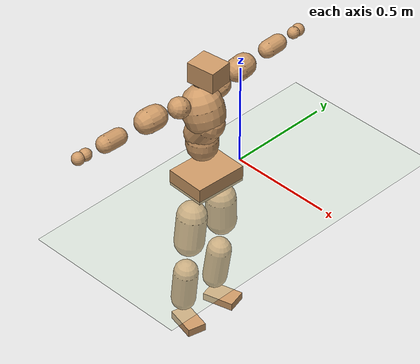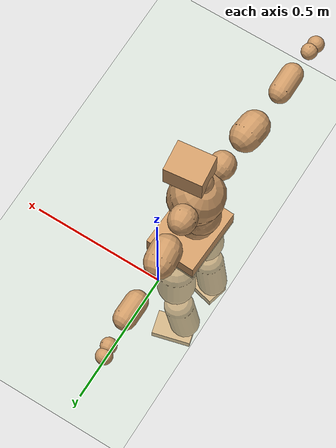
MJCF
<mujoco model="humanoid">
  <compiler coordinate="local" angle="radian"/>
  <default>
    <joint damping="0.0" armature="0.01" stiffness="0.0" limited="true"/>
    <geom conaffinity="1" condim="3" contype="7" margin="0.001" rgba="0.8 0.6 .4 1"/>
  </default>
  <asset>
    <texture type="skybox" builtin="gradient" rgb1=".4 .5 .6" rgb2="0 0 0" width="100" height="100"/>
    <texture builtin="flat" height="1278" mark="cross" markrgb="1 1 1" name="texgeom" random="0.01" rgb1="0.8 0.6 0.4" rgb2="0.8 0.6 0.4" type="cube" width="127"/>
    <texture builtin="checker" height="100" name="texplane" rgb1="0 0 0" rgb2="0.8 0.8 0.8" type="2d" width="100"/>
    <material name="MatPlane" reflectance="0.5" shininess="1" specular="1" texrepeat="60 60" texture="texplane"/>
    <material name="geom" texture="texgeom" texuniform="true"/>
  </asset>
  <worldbody>
    <light cutoff="100" diffuse="1 1 1" dir="-0 0 -1.3" directional="true" exponent="1" pos="0 0 1.3" specular=".1 .1 .1"/>
    <geom conaffinity="1" condim="3" name="floor" pos="0 0 0" rgba="0.8 0.9 0.8 1" size="100 100 .2" type="plane" material="MatPlane"/>
    <body name="Pelvis" pos="0.002 -0.2069 0.0374">
      <freejoint name="Pelvis"/>
      <geom type="box" contype="1" conaffinity="1" density="5359.374861" pos="-0.0052 0.0002 -0.0129" size="0.0976 0.1285 0.0397" quat="0.9997 0.0000 0.0000 -0.0225" name="Pelvis"/>
      <body name="L_Hip" pos="-0.0023 0.0847 -0.0906">
        <joint name="L_Hip_x" type="hinge" pos="0 0 0" axis="1 0 0" stiffness="1600" damping="160" armature="0.02" range="-180.0000 180.0000"/>
        <joint name="L_Hip_y" type="hinge" pos="0 0 0" axis="0 1 0" stiffness="1600" damping="160" armature="0.02" range="-180.0000 180.0000"/>
        <joint name="L_Hip_z" type="hinge" pos="0 0 0" axis="0 0 1" stiffness="1600" damping="160" armature="0.02" range="-180.0000 180.0000"/>
        <geom type="capsule" contype="1" conaffinity="1" density="2040.816327" size="0.0708" fromto="-0.0039 0.0067 -0.1005 -0.0091 0.0157 -0.2354" name="L_Hip"/>
        <body name="L_Knee" pos="-0.013 0.0225 -0.336">
          <joint name="L_Knee_x" type="hinge" pos="0 0 0" axis="1 0 0" stiffness="1600" damping="160" armature="0.02" range="-180.0000 180.0000"/>
          <joint name="L_Knee_y" type="hinge" pos="0 0 0" axis="0 1 0" stiffness="1600" damping="160" armature="0.02" range="-180.0000 180.0000"/>
          <joint name="L_Knee_z" type="hinge" pos="0 0 0" axis="0 0 1" stiffness="1600" damping="160" armature="0.02" range="-180.0000 180.0000"/>
          <geom type="capsule" contype="1" conaffinity="1" density="1234.567901" size="0.0575" fromto="-0.0123 -0.0023 -0.0866 -0.0364 -0.0067 -0.2573" name="L_Knee"/>
          <body name="L_Ankle" pos="-0.0487 -0.009 -0.3439">
            <joint name="L_Ankle_x" type="hinge" pos="0 0 0" axis="1 0 0" stiffness="1600" damping="160" armature="0.02" range="-180.0000 180.0000"/>
            <joint name="L_Ankle_y" type="hinge" pos="0 0 0" axis="0 1 0" stiffness="1600" damping="160" armature="0.02" range="-180.0000 180.0000"/>
            <joint name="L_Ankle_z" type="hinge" pos="0 0 0" axis="0 0 1" stiffness="1600" damping="160" armature="0.02" range="-180.0000 180.0000"/>
            <geom type="box" contype="1" conaffinity="1" density="1000.000046" pos="0.0525 0.0139 -0.0244" size="0.0763 0.0479 0.0187" quat="0.9917 0.0000 0.0000 0.1289" name="L_Ankle"/>
            <body name="L_Toe" pos="0.1049 0.0278 -0.0489">
              <joint name="L_Toe_x" type="hinge" pos="0 0 0" axis="1 0 0" stiffness="1000" damping="100" armature="0.02" range="-180.0000 180.0000"/>
              <joint name="L_Toe_y" type="hinge" pos="0 0 0" axis="0 1 0" stiffness="1000" damping="100" armature="0.02" range="-180.0000 180.0000"/>
              <joint name="L_Toe_z" type="hinge" pos="0 0 0" axis="0 0 1" stiffness="1000" damping="100" armature="0.02" range="-180.0000 180.0000"/>
              <geom type="box" contype="1" conaffinity="1" density="7816335.588965" pos="0.0000 0.0000 0.0258" size="0.0009 0.0023 0.001" quat="0.9908 0.0000 0.0000 0.1353" name="L_Toe"/>
            </body>
          </body>
        </body>
      </body>
      <body name="R_Hip" pos="-0.0003 -0.0828 -0.0903">
        <joint name="R_Hip_x" type="hinge" pos="0 0 0" axis="1 0 0" stiffness="1600" damping="160" armature="0.02" range="-180.0000 180.0000"/>
        <joint name="R_Hip_y" type="hinge" pos="0 0 0" axis="0 1 0" stiffness="1600" damping="160" armature="0.02" range="-180.0000 180.0000"/>
        <joint name="R_Hip_z" type="hinge" pos="0 0 0" axis="0 0 1" stiffness="1600" damping="160" armature="0.02" range="-180.0000 180.0000"/>
        <geom type="capsule" contype="1" conaffinity="1" density="2040.816327" size="0.0702" fromto="-0.0043 -0.0081 -0.0998 -0.0104 -0.0199 -0.2433" name="R_Hip"/>
        <body name="R_Knee" pos="-0.0147 -0.028 -0.3431">
          <joint name="R_Knee_x" type="hinge" pos="0 0 0" axis="1 0 0" stiffness="1600" damping="160" armature="0.02" range="-180.0000 180.0000"/>
          <joint name="R_Knee_y" type="hinge" pos="0 0 0" axis="0 1 0" stiffness="1600" damping="160" armature="0.02" range="-180.0000 180.0000"/>
          <joint name="R_Knee_z" type="hinge" pos="0 0 0" axis="0 0 1" stiffness="1600" damping="160" armature="0.02" range="-180.0000 180.0000"/>
          <geom type="capsule" contype="1" conaffinity="1" density="1234.567901" size="0.0575" fromto="-0.0119 0.0028 -0.0867 -0.0358 0.0084 -0.2605" name="R_Knee"/>
          <body name="R_Ankle" pos="-0.0477 0.0112 -0.3472">
            <joint name="R_Ankle_x" type="hinge" pos="0 0 0" axis="1 0 0" stiffness="1600" damping="160" armature="0.02" range="-180.0000 180.0000"/>
            <joint name="R_Ankle_y" type="hinge" pos="0 0 0" axis="0 1 0" stiffness="1600" damping="160" armature="0.02" range="-180.0000 180.0000"/>
            <joint name="R_Ankle_z" type="hinge" pos="0 0 0" axis="0 0 1" stiffness="1600" damping="160" armature="0.02" range="-180.0000 180.0000"/>
            <geom type="box" contype="1" conaffinity="1" density="999.999919" pos="0.0543 -0.0130 -0.0224" size="0.0766 0.0448 0.0194" quat="0.9931 0.0000 0.0000 -0.1174" name="R_Ankle"/>
            <body name="R_Toe" pos="0.1086 -0.0261 -0.0449">
              <joint name="R_Toe_x" type="hinge" pos="0 0 0" axis="1 0 0" stiffness="1000" damping="100" armature="0.02" range="-180.0000 180.0000"/>
              <joint name="R_Toe_y" type="hinge" pos="0 0 0" axis="0 1 0" stiffness="1000" damping="100" armature="0.02" range="-180.0000 180.0000"/>
              <joint name="R_Toe_z" type="hinge" pos="0 0 0" axis="0 0 1" stiffness="1000" damping="100" armature="0.02" range="-180.0000 180.0000"/>
              <geom type="box" contype="1" conaffinity="1" density="7831576.864094" pos="0.0000 0.0000 0.0228" size="0.0009 0.0022 0.001" quat="0.9943 0.0000 0.0000 -0.1068" name="R_Toe"/>
            </body>
          </body>
        </body>
      </body>
      <body name="Torso" pos="-0.0285 -0.0005 0.1033">
        <joint name="Torso_x" type="hinge" pos="0 0 0" axis="1 0 0" stiffness="2000" damping="200" armature="0.02" range="-180.0000 180.0000"/>
        <joint name="Torso_y" type="hinge" pos="0 0 0" axis="0 1 0" stiffness="2000" damping="200" armature="0.02" range="-180.0000 180.0000"/>
        <joint name="Torso_z" type="hinge" pos="0 0 0" axis="0 0 1" stiffness="2000" damping="200" armature="0.02" range="-180.0000 180.0000"/>
        <geom type="capsule" contype="1" conaffinity="1" density="2040.816327" size="0.074" fromto="-0.0033 0.0007 0.0739 -0.0019 0.0004 0.0415" name="Torso"/>
        <body name="Spine" pos="-0.0052 0.0011 0.1154">
          <joint name="Spine_x" type="hinge" pos="0 0 0" axis="1 0 0" stiffness="2000" damping="200" armature="0.02" range="-180.0000 180.0000"/>
          <joint name="Spine_y" type="hinge" pos="0 0 0" axis="0 1 0" stiffness="2000" damping="200" armature="0.02" range="-180.0000 180.0000"/>
          <joint name="Spine_z" type="hinge" pos="0 0 0" axis="0 0 1" stiffness="2000" damping="200" armature="0.02" range="-180.0000 180.0000"/>
          <geom type="capsule" contype="1" conaffinity="1" density="2040.816327" size="0.0739" fromto="0.0413 0.0009 0.0612 -0.0104 -0.0002 -0.0154" name="Spine"/>
          <body name="Chest" pos="0.0309 0.0007 0.0458">
            <joint name="Chest_x" type="hinge" pos="0 0 0" axis="1 0 0" stiffness="2000" damping="200" armature="0.02" range="-180.0000 180.0000"/>
            <joint name="Chest_y" type="hinge" pos="0 0 0" axis="0 1 0" stiffness="2000" damping="200" armature="0.02" range="-180.0000 180.0000"/>
            <joint name="Chest_z" type="hinge" pos="0 0 0" axis="0 0 1" stiffness="2000" damping="200" armature="0.02" range="-180.0000 180.0000"/>
            <geom type="capsule" contype="1" conaffinity="1" density="2040.816327" size="0.0969" fromto="-0.0297 -0.0004 0.0922 -0.0172 -0.0002 0.0534" name="Chest"/>
            <body name="Neck" pos="-0.0619 0.0002 0.203">
              <joint name="Neck_x" type="hinge" pos="0 0 0" axis="1 0 0" stiffness="1000" damping="100" armature="0.02" range="-180.0000 180.0000"/>
              <joint name="Neck_y" type="hinge" pos="0 0 0" axis="0 1 0" stiffness="1000" damping="100" armature="0.02" range="-180.0000 180.0000"/>
              <joint name="Neck_z" type="hinge" pos="0 0 0" axis="0 0 1" stiffness="1000" damping="100" armature="0.02" range="-180.0000 180.0000"/>
              <geom type="capsule" contype="1" conaffinity="1" density="1000" size="0.039" fromto="0.0243 0.0018 0.0305 0.0175 0.0013 0.0219" name="Neck"/>
              <body name="Head" pos="0.0418 0.0031 0.0525">
                <joint name="Head_x" type="hinge" pos="0 0 0" axis="1 0 0" stiffness="1000" damping="100" armature="0.02" range="-180.0000 180.0000"/>
                <joint name="Head_y" type="hinge" pos="0 0 0" axis="0 1 0" stiffness="1000" damping="100" armature="0.02" range="-180.0000 180.0000"/>
                <joint name="Head_z" type="hinge" pos="0 0 0" axis="0 0 1" stiffness="1000" damping="100" armature="0.02" range="-180.0000 180.0000"/>
                <geom type="box" contype="1" conaffinity="1" density="2250.00009" pos="0.0219 0.0025 0.0272" size="0.0701 0.0573 0.0501" quat="0.9983 0.0000 0.0000 0.0576" name="Head"/>
              </body>
            </body>
            <body name="L_Thorax" pos="-0.036 0.0745 0.1176">
              <joint name="L_Thorax_x" type="hinge" pos="0 0 0" axis="1 0 0" stiffness="1000" damping="100" armature="0.02" range="-180.0000 180.0000"/>
              <joint name="L_Thorax_y" type="hinge" pos="0 0 0" axis="0 1 0" stiffness="1000" damping="100" armature="0.02" range="-180.0000 180.0000"/>
              <joint name="L_Thorax_z" type="hinge" pos="0 0 0" axis="0 0 1" stiffness="1000" damping="100" armature="0.02" range="-180.0000 180.0000"/>
              <geom type="capsule" contype="1" conaffinity="1" density="1000" size="0.0497" fromto="-0.0052 0.0464 0.0171 -0.0038 0.0344 0.0127" name="L_Thorax"/>
              <body name="L_Shoulder" pos="-0.009 0.0808 0.0298">
                <joint name="L_Shoulder_x" type="hinge" pos="0 0 0" axis="1 0 0" stiffness="1000" damping="100" armature="0.02" range="-720.0000 720.0000"/>
                <joint name="L_Shoulder_y" type="hinge" pos="0 0 0" axis="0 1 0" stiffness="1000" damping="100" armature="0.02" range="-720.0000 720.0000"/>
                <joint name="L_Shoulder_z" type="hinge" pos="0 0 0" axis="0 0 1" stiffness="1000" damping="100" armature="0.02" range="-720.0000 720.0000"/>
                <geom type="capsule" contype="1" conaffinity="1" density="1000" size="0.0553" fromto="-0.0095 0.0848 -0.0017 -0.0147 0.1316 -0.0026" name="L_Shoulder"/>
                <body name="L_Elbow" pos="-0.0242 0.2164 -0.0043">
                  <joint name="L_Elbow_x" type="hinge" pos="0 0 0" axis="1 0 0" stiffness="1000" damping="100" armature="0.02" range="-720.0000 720.0000"/>
                  <joint name="L_Elbow_y" type="hinge" pos="0 0 0" axis="0 1 0" stiffness="1000" damping="100" armature="0.02" range="-720.0000 720.0000"/>
                  <joint name="L_Elbow_z" type="hinge" pos="0 0 0" axis="0 0 1" stiffness="1000" damping="100" armature="0.02" range="-720.0000 720.0000"/>
                  <geom type="capsule" contype="1" conaffinity="1" density="1000" size="0.0402" fromto="0.0006 0.0701 0.0025 0.0012 0.1374 0.0049" name="L_Elbow"/>
                  <body name="L_Wrist" pos="0.0017 0.2075 0.0074">
                    <joint name="L_Wrist_x" type="hinge" pos="0 0 0" axis="1 0 0" stiffness="600" damping="60" armature="0.02" range="-180.0000 180.0000"/>
                    <joint name="L_Wrist_y" type="hinge" pos="0 0 0" axis="0 1 0" stiffness="600" damping="60" armature="0.02" range="-180.0000 180.0000"/>
                    <joint name="L_Wrist_z" type="hinge" pos="0 0 0" axis="0 0 1" stiffness="600" damping="60" armature="0.02" range="-180.0000 180.0000"/>
                    <geom type="capsule" contype="1" conaffinity="1" density="1000" size="0.028" fromto="-0.0057 0.0349 -0.0042 -0.0060 0.0368 -0.0044" name="L_Wrist"/>
                    <body name="L_Hand" pos="-0.0116 0.0717 -0.0086">
                      <joint name="L_Hand_x" type="hinge" pos="0 0 0" axis="1 0 0" stiffness="600" damping="60" armature="0.02" range="-180.0000 180.0000"/>
                      <joint name="L_Hand_y" type="hinge" pos="0 0 0" axis="0 1 0" stiffness="600" damping="60" armature="0.02" range="-180.0000 180.0000"/>
                      <joint name="L_Hand_z" type="hinge" pos="0 0 0" axis="0 0 1" stiffness="600" damping="60" armature="0.02" range="-180.0000 180.0000"/>
                      <geom type="sphere" contype="1" conaffinity="1" density="1000" size="0.0292" pos="0.0000 0.0000 0.0000" name="L_Hand"/>
                    </body>
                  </body>
                </body>
              </body>
            </body>
            <body name="R_Thorax" pos="-0.043 -0.0765 0.1162">
              <joint name="R_Thorax_x" type="hinge" pos="0 0 0" axis="1 0 0" stiffness="1000" damping="100" armature="0.02" range="-180.0000 180.0000"/>
              <joint name="R_Thorax_y" type="hinge" pos="0 0 0" axis="0 1 0" stiffness="1000" damping="100" armature="0.02" range="-180.0000 180.0000"/>
              <joint name="R_Thorax_z" type="hinge" pos="0 0 0" axis="0 0 1" stiffness="1000" damping="100" armature="0.02" range="-180.0000 180.0000"/>
              <geom type="capsule" contype="1" conaffinity="1" density="1000" size="0.049" fromto="-0.0057 -0.0455 0.0174 -0.0051 -0.0402 0.0154" name="R_Thorax"/>
              <body name="R_Shoulder" pos="-0.0108 -0.0857 0.0328">
                <joint name="R_Shoulder_x" type="hinge" pos="0 0 0" axis="1 0 0" stiffness="1000" damping="100" armature="0.02" range="-720.0000 720.0000"/>
                <joint name="R_Shoulder_y" type="hinge" pos="0 0 0" axis="0 1 0" stiffness="1000" damping="100" armature="0.02" range="-720.0000 720.0000"/>
                <joint name="R_Shoulder_z" type="hinge" pos="0 0 0" axis="0 0 1" stiffness="1000" damping="100" armature="0.02" range="-720.0000 720.0000"/>
                <geom type="capsule" contype="1" conaffinity="1" density="1000" size="0.056" fromto="-0.0084 -0.0855 -0.0038 -0.0130 -0.1332 -0.0059" name="R_Shoulder"/>
                <body name="R_Elbow" pos="-0.0214 -0.2187 -0.0097">
                  <joint name="R_Elbow_x" type="hinge" pos="0 0 0" axis="1 0 0" stiffness="1000" damping="100" armature="0.02" range="-720.0000 720.0000"/>
                  <joint name="R_Elbow_y" type="hinge" pos="0 0 0" axis="0 1 0" stiffness="1000" damping="100" armature="0.02" range="-720.0000 720.0000"/>
                  <joint name="R_Elbow_z" type="hinge" pos="0 0 0" axis="0 0 1" stiffness="1000" damping="100" armature="0.02" range="-720.0000 720.0000"/>
                  <geom type="capsule" contype="1" conaffinity="1" density="1000" size="0.0402" fromto="-0.0003 -0.0701 0.0028 -0.0007 -0.1470 0.0058" name="R_Elbow"/>
                  <body name="R_Wrist" pos="-0.001 -0.2172 0.0085">
                    <joint name="R_Wrist_x" type="hinge" pos="0 0 0" axis="1 0 0" stiffness="600" damping="60" armature="0.02" range="-180.0000 180.0000"/>
                    <joint name="R_Wrist_y" type="hinge" pos="0 0 0" axis="0 1 0" stiffness="600" damping="60" armature="0.02" range="-180.0000 180.0000"/>
                    <joint name="R_Wrist_z" type="hinge" pos="0 0 0" axis="0 0 1" stiffness="600" damping="60" armature="0.02" range="-180.0000 180.0000"/>
                    <geom type="capsule" contype="1" conaffinity="1" density="1000" size="0.029" fromto="-0.0047 -0.0356 -0.0032 -0.0050 -0.0376 -0.0034" name="R_Wrist"/>
                    <body name="R_Hand" pos="-0.0097 -0.0732 -0.0066">
                      <joint name="R_Hand_x" type="hinge" pos="0 0 0" axis="1 0 0" stiffness="600" damping="60" armature="0.02" range="-180.0000 180.0000"/>
                      <joint name="R_Hand_y" type="hinge" pos="0 0 0" axis="0 1 0" stiffness="600" damping="60" armature="0.02" range="-180.0000 180.0000"/>
                      <joint name="R_Hand_z" type="hinge" pos="0 0 0" axis="0 0 1" stiffness="600" damping="60" armature="0.02" range="-180.0000 180.0000"/>
                      <geom type="sphere" contype="1" conaffinity="1" density="1000" size="0.0298" pos="0.0000 0.0000 0.0000" name="R_Hand"/>
                    </body>
                  </body>
                </body>
              </body>
            </body>
          </body>
        </body>
      </body>
    </body>
  </worldbody>
  <actuator>
    <motor name="L_Hip_x" joint="L_Hip_x" gear="500"/>
    <motor name="L_Hip_y" joint="L_Hip_y" gear="500"/>
    <motor name="L_Hip_z" joint="L_Hip_z" gear="500"/>
    <motor name="L_Knee_x" joint="L_Knee_x" gear="500"/>
    <motor name="L_Knee_y" joint="L_Knee_y" gear="500"/>
    <motor name="L_Knee_z" joint="L_Knee_z" gear="500"/>
    <motor name="L_Ankle_x" joint="L_Ankle_x" gear="500"/>
    <motor name="L_Ankle_y" joint="L_Ankle_y" gear="500"/>
    <motor name="L_Ankle_z" joint="L_Ankle_z" gear="500"/>
    <motor name="L_Toe_x" joint="L_Toe_x" gear="500"/>
    <motor name="L_Toe_y" joint="L_Toe_y" gear="500"/>
    <motor name="L_Toe_z" joint="L_Toe_z" gear="500"/>
    <motor name="R_Hip_x" joint="R_Hip_x" gear="500"/>
    <motor name="R_Hip_y" joint="R_Hip_y" gear="500"/>
    <motor name="R_Hip_z" joint="R_Hip_z" gear="500"/>
    <motor name="R_Knee_x" joint="R_Knee_x" gear="500"/>
    <motor name="R_Knee_y" joint="R_Knee_y" gear="500"/>
    <motor name="R_Knee_z" joint="R_Knee_z" gear="500"/>
    <motor name="R_Ankle_x" joint="R_Ankle_x" gear="500"/>
    <motor name="R_Ankle_y" joint="R_Ankle_y" gear="500"/>
    <motor name="R_Ankle_z" joint="R_Ankle_z" gear="500"/>
    <motor name="R_Toe_x" joint="R_Toe_x" gear="500"/>
    <motor name="R_Toe_y" joint="R_Toe_y" gear="500"/>
    <motor name="R_Toe_z" joint="R_Toe_z" gear="500"/>
    <motor name="Torso_x" joint="Torso_x" gear="500"/>
    <motor name="Torso_y" joint="Torso_y" gear="500"/>
    <motor name="Torso_z" joint="Torso_z" gear="500"/>
    <motor name="Spine_x" joint="Spine_x" gear="500"/>
    <motor name="Spine_y" joint="Spine_y" gear="500"/>
    <motor name="Spine_z" joint="Spine_z" gear="500"/>
    <motor name="Chest_x" joint="Chest_x" gear="500"/>
    <motor name="Chest_y" joint="Chest_y" gear="500"/>
    <motor name="Chest_z" joint="Chest_z" gear="500"/>
    <motor name="Neck_x" joint="Neck_x" gear="500"/>
    <motor name="Neck_y" joint="Neck_y" gear="500"/>
    <motor name="Neck_z" joint="Neck_z" gear="500"/>
    <motor name="Head_x" joint="Head_x" gear="500"/>
    <motor name="Head_y" joint="Head_y" gear="500"/>
    <motor name="Head_z" joint="Head_z" gear="500"/>
    <motor name="L_Thorax_x" joint="L_Thorax_x" gear="500"/>
    <motor name="L_Thorax_y" joint="L_Thorax_y" gear="500"/>
    <motor name="L_Thorax_z" joint="L_Thorax_z" gear="500"/>
    <motor name="L_Shoulder_x" joint="L_Shoulder_x" gear="500"/>
    <motor name="L_Shoulder_y" joint="L_Shoulder_y" gear="500"/>
    <motor name="L_Shoulder_z" joint="L_Shoulder_z" gear="500"/>
    <motor name="L_Elbow_x" joint="L_Elbow_x" gear="500"/>
    <motor name="L_Elbow_y" joint="L_Elbow_y" gear="500"/>
    <motor name="L_Elbow_z" joint="L_Elbow_z" gear="500"/>
    <motor name="L_Wrist_x" joint="L_Wrist_x" gear="500"/>
    <motor name="L_Wrist_y" joint="L_Wrist_y" gear="500"/>
    <motor name="L_Wrist_z" joint="L_Wrist_z" gear="500"/>
    <motor name="L_Hand_x" joint="L_Hand_x" gear="500"/>
    <motor name="L_Hand_y" joint="L_Hand_y" gear="500"/>
    <motor name="L_Hand_z" joint="L_Hand_z" gear="500"/>
    <motor name="R_Thorax_x" joint="R_Thorax_x" gear="500"/>
    <motor name="R_Thorax_y" joint="R_Thorax_y" gear="500"/>
    <motor name="R_Thorax_z" joint="R_Thorax_z" gear="500"/>
    <motor name="R_Shoulder_x" joint="R_Shoulder_x" gear="500"/>
    <motor name="R_Shoulder_y" joint="R_Shoulder_y" gear="500"/>
    <motor name="R_Shoulder_z" joint="R_Shoulder_z" gear="500"/>
    <motor name="R_Elbow_x" joint="R_Elbow_x" gear="500"/>
    <motor name="R_Elbow_y" joint="R_Elbow_y" gear="500"/>
    <motor name="R_Elbow_z" joint="R_Elbow_z" gear="500"/>
    <motor name="R_Wrist_x" joint="R_Wrist_x" gear="500"/>
    <motor name="R_Wrist_y" joint="R_Wrist_y" gear="500"/>
    <motor name="R_Wrist_z" joint="R_Wrist_z" gear="500"/>
    <motor name="R_Hand_x" joint="R_Hand_x" gear="500"/>
    <motor name="R_Hand_y" joint="R_Hand_y" gear="500"/>
    <motor name="R_Hand_z" joint="R_Hand_z" gear="500"/>
  </actuator>
  <contact>
    <exclude body1="Torso" body2="Chest"/>
    <exclude body1="Head" body2="Chest"/>
    <exclude body1="R_Knee" body2="R_Toe"/>
    <exclude body1="R_Knee" body2="L_Ankle"/>
    <exclude body1="R_Knee" body2="L_Toe"/>
    <exclude body1="L_Knee" body2="L_Toe"/>
    <exclude body1="L_Knee" body2="R_Ankle"/>
    <exclude body1="L_Knee" body2="R_Toe"/>
    <exclude body1="L_Shoulder" body2="Chest"/>
    <exclude body1="R_Shoulder" body2="Chest"/>
  </contact>
  <sensor/>
  <size njmax="700" nconmax="700"/>
</mujoco>
